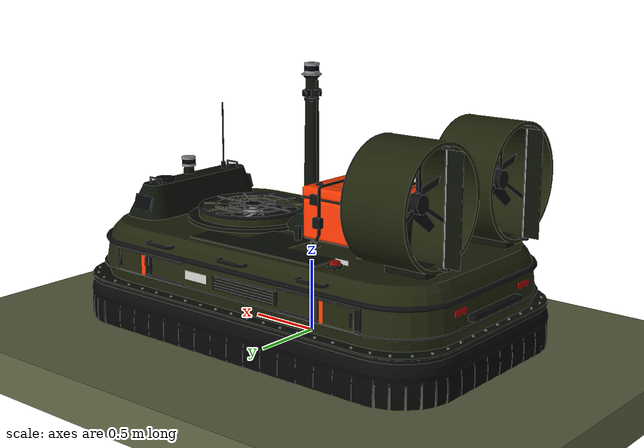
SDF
<?xml version="1.0"?>
<!-- GENERATED by hover_gazebo/scripts/gen_test_worlds_v3.py -->
<sdf version="1.9">
  <world name="v3_load_share_test">
    <physics name="1ms" type="dart">
      <max_step_size>0.001</max_step_size>
      <real_time_factor>1.0</real_time_factor>
      <dart><collision_detector>bullet</collision_detector></dart>
    </physics>
    <gravity>0 0 -9.81</gravity>
    <spherical_coordinates>
      <surface_model>EARTH_WGS84</surface_model>
      <latitude_deg>1.4466</latitude_deg><longitude_deg>103.7300</longitude_deg>
      <elevation>0</elevation><heading_deg>0</heading_deg>
    </spherical_coordinates>

    <plugin filename="gz-sim-physics-system" name="gz::sim::systems::Physics"/>
    <plugin filename="gz-sim-user-commands-system" name="gz::sim::systems::UserCommands"/>
    <plugin filename="gz-sim-scene-broadcaster-system" name="gz::sim::systems::SceneBroadcaster"/>
    <plugin filename="gz-sim-imu-system" name="gz::sim::systems::Imu"/>
    <plugin filename="gz-sim-navsat-system" name="gz::sim::systems::NavSat"/>
    <plugin filename="gz-sim-sensors-system" name="gz::sim::systems::Sensors">
      <render_engine>ogre2</render_engine>
    </plugin>
    <plugin filename="tidal_vehicle_plugins" name="hover::TerrainZones">
      <ground_height>0.0</ground_height>
    </plugin>
    <plugin filename="tidal_vehicle_plugins" name="hover::ScriptedCommands">
      <command><time>0.5</time><topic>/model/hovercraft_v3/lift_share</topic><type>gz.msgs.Double</type><data>data: 0.6</data></command>
      <command><time>0.6</time><topic>/model/hovercraft_v3/hover_enabled</topic><type>gz.msgs.Boolean</type><data>data: true</data></command>
      <command><time>6.0</time><topic>/model/hovercraft_v3/cmd_vel</topic><type>gz.msgs.Twist</type><data>linear { x: 1.0 } angular { z: 0.0 }</data></command>
      <command><time>6.2</time><topic>/model/hovercraft_v3/cmd_vel</topic><type>gz.msgs.Twist</type><data>linear { x: 1.0 } angular { z: 0.0 }</data></command>
      <command><time>6.4</time><topic>/model/hovercraft_v3/cmd_vel</topic><type>gz.msgs.Twist</type><data>linear { x: 1.0 } angular { z: 0.0 }</data></command>
      <command><time>6.6</time><topic>/model/hovercraft_v3/cmd_vel</topic><type>gz.msgs.Twist</type><data>linear { x: 1.0 } angular { z: 0.0 }</data></command>
      <command><time>6.8</time><topic>/model/hovercraft_v3/cmd_vel</topic><type>gz.msgs.Twist</type><data>linear { x: 1.0 } angular { z: 0.0 }</data></command>
      <command><time>7.0</time><topic>/model/hovercraft_v3/cmd_vel</topic><type>gz.msgs.Twist</type><data>linear { x: 1.0 } angular { z: 0.0 }</data></command>
      <command><time>7.2</time><topic>/model/hovercraft_v3/cmd_vel</topic><type>gz.msgs.Twist</type><data>linear { x: 1.0 } angular { z: 0.0 }</data></command>
      <command><time>7.4</time><topic>/model/hovercraft_v3/cmd_vel</topic><type>gz.msgs.Twist</type><data>linear { x: 1.0 } angular { z: 0.0 }</data></command>
      <command><time>7.6</time><topic>/model/hovercraft_v3/cmd_vel</topic><type>gz.msgs.Twist</type><data>linear { x: 1.0 } angular { z: 0.0 }</data></command>
      <command><time>7.8</time><topic>/model/hovercraft_v3/cmd_vel</topic><type>gz.msgs.Twist</type><data>linear { x: 1.0 } angular { z: 0.0 }</data></command>
      <command><time>8.0</time><topic>/model/hovercraft_v3/cmd_vel</topic><type>gz.msgs.Twist</type><data>linear { x: 1.0 } angular { z: 0.0 }</data></command>
      <command><time>8.2</time><topic>/model/hovercraft_v3/cmd_vel</topic><type>gz.msgs.Twist</type><data>linear { x: 1.0 } angular { z: 0.0 }</data></command>
      <command><time>8.4</time><topic>/model/hovercraft_v3/cmd_vel</topic><type>gz.msgs.Twist</type><data>linear { x: 1.0 } angular { z: 0.0 }</data></command>
      <command><time>8.6</time><topic>/model/hovercraft_v3/cmd_vel</topic><type>gz.msgs.Twist</type><data>linear { x: 1.0 } angular { z: 0.0 }</data></command>
      <command><time>8.8</time><topic>/model/hovercraft_v3/cmd_vel</topic><type>gz.msgs.Twist</type><data>linear { x: 1.0 } angular { z: 0.0 }</data></command>
      <command><time>9.0</time><topic>/model/hovercraft_v3/cmd_vel</topic><type>gz.msgs.Twist</type><data>linear { x: 1.0 } angular { z: 0.0 }</data></command>
      <command><time>9.2</time><topic>/model/hovercraft_v3/cmd_vel</topic><type>gz.msgs.Twist</type><data>linear { x: 1.0 } angular { z: 0.0 }</data></command>
      <command><time>9.4</time><topic>/model/hovercraft_v3/cmd_vel</topic><type>gz.msgs.Twist</type><data>linear { x: 1.0 } angular { z: 0.0 }</data></command>
      <command><time>9.6</time><topic>/model/hovercraft_v3/cmd_vel</topic><type>gz.msgs.Twist</type><data>linear { x: 1.0 } angular { z: 0.0 }</data></command>
      <command><time>9.8</time><topic>/model/hovercraft_v3/cmd_vel</topic><type>gz.msgs.Twist</type><data>linear { x: 1.0 } angular { z: 0.0 }</data></command>
      <command><time>10.0</time><topic>/model/hovercraft_v3/cmd_vel</topic><type>gz.msgs.Twist</type><data>linear { x: 1.0 } angular { z: 0.0 }</data></command>
      <command><time>10.2</time><topic>/model/hovercraft_v3/cmd_vel</topic><type>gz.msgs.Twist</type><data>linear { x: 1.0 } angular { z: 0.0 }</data></command>
      <command><time>10.4</time><topic>/model/hovercraft_v3/cmd_vel</topic><type>gz.msgs.Twist</type><data>linear { x: 1.0 } angular { z: 0.0 }</data></command>
      <command><time>10.6</time><topic>/model/hovercraft_v3/cmd_vel</topic><type>gz.msgs.Twist</type><data>linear { x: 1.0 } angular { z: 0.0 }</data></command>
      <command><time>10.8</time><topic>/model/hovercraft_v3/cmd_vel</topic><type>gz.msgs.Twist</type><data>linear { x: 1.0 } angular { z: 0.0 }</data></command>
      <command><time>11.0</time><topic>/model/hovercraft_v3/cmd_vel</topic><type>gz.msgs.Twist</type><data>linear { x: 1.0 } angular { z: 0.0 }</data></command>
      <command><time>11.2</time><topic>/model/hovercraft_v3/cmd_vel</topic><type>gz.msgs.Twist</type><data>linear { x: 1.0 } angular { z: 0.0 }</data></command>
      <command><time>11.4</time><topic>/model/hovercraft_v3/cmd_vel</topic><type>gz.msgs.Twist</type><data>linear { x: 1.0 } angular { z: 0.0 }</data></command>
      <command><time>11.6</time><topic>/model/hovercraft_v3/cmd_vel</topic><type>gz.msgs.Twist</type><data>linear { x: 1.0 } angular { z: 0.0 }</data></command>
      <command><time>11.8</time><topic>/model/hovercraft_v3/cmd_vel</topic><type>gz.msgs.Twist</type><data>linear { x: 1.0 } angular { z: 0.0 }</data></command>
      <command><time>12.0</time><topic>/model/hovercraft_v3/cmd_vel</topic><type>gz.msgs.Twist</type><data>linear { x: 1.0 } angular { z: 0.0 }</data></command>
      <command><time>12.2</time><topic>/model/hovercraft_v3/cmd_vel</topic><type>gz.msgs.Twist</type><data>linear { x: 1.0 } angular { z: 0.0 }</data></command>
      <command><time>12.4</time><topic>/model/hovercraft_v3/cmd_vel</topic><type>gz.msgs.Twist</type><data>linear { x: 1.0 } angular { z: 0.0 }</data></command>
      <command><time>12.6</time><topic>/model/hovercraft_v3/cmd_vel</topic><type>gz.msgs.Twist</type><data>linear { x: 1.0 } angular { z: 0.0 }</data></command>
      <command><time>12.8</time><topic>/model/hovercraft_v3/cmd_vel</topic><type>gz.msgs.Twist</type><data>linear { x: 1.0 } angular { z: 0.0 }</data></command>
      <command><time>13.0</time><topic>/model/hovercraft_v3/cmd_vel</topic><type>gz.msgs.Twist</type><data>linear { x: 1.0 } angular { z: 0.0 }</data></command>
      <command><time>13.2</time><topic>/model/hovercraft_v3/cmd_vel</topic><type>gz.msgs.Twist</type><data>linear { x: 1.0 } angular { z: 0.0 }</data></command>
      <command><time>13.4</time><topic>/model/hovercraft_v3/cmd_vel</topic><type>gz.msgs.Twist</type><data>linear { x: 1.0 } angular { z: 0.0 }</data></command>
      <command><time>13.6</time><topic>/model/hovercraft_v3/cmd_vel</topic><type>gz.msgs.Twist</type><data>linear { x: 1.0 } angular { z: 0.0 }</data></command>
      <command><time>13.8</time><topic>/model/hovercraft_v3/cmd_vel</topic><type>gz.msgs.Twist</type><data>linear { x: 1.0 } angular { z: 0.0 }</data></command>
      <command><time>14.0</time><topic>/model/hovercraft_v3/cmd_vel</topic><type>gz.msgs.Twist</type><data>linear { x: 0.0 } angular { z: 0.0 }</data></command>
      <command><time>14.2</time><topic>/model/hovercraft_v3/cmd_vel</topic><type>gz.msgs.Twist</type><data>linear { x: 0.0 } angular { z: 0.0 }</data></command>
      <command><time>14.4</time><topic>/model/hovercraft_v3/cmd_vel</topic><type>gz.msgs.Twist</type><data>linear { x: 0.0 } angular { z: 0.0 }</data></command>
      <command><time>14.6</time><topic>/model/hovercraft_v3/cmd_vel</topic><type>gz.msgs.Twist</type><data>linear { x: 0.0 } angular { z: 0.0 }</data></command>
      <command><time>14.8</time><topic>/model/hovercraft_v3/cmd_vel</topic><type>gz.msgs.Twist</type><data>linear { x: 0.0 } angular { z: 0.0 }</data></command>
      <command><time>15.0</time><topic>/model/hovercraft_v3/cmd_vel</topic><type>gz.msgs.Twist</type><data>linear { x: 0.0 } angular { z: 0.0 }</data></command>
      <command><time>15.2</time><topic>/model/hovercraft_v3/cmd_vel</topic><type>gz.msgs.Twist</type><data>linear { x: 0.0 } angular { z: 0.0 }</data></command>
      <command><time>15.4</time><topic>/model/hovercraft_v3/cmd_vel</topic><type>gz.msgs.Twist</type><data>linear { x: 0.0 } angular { z: 0.0 }</data></command>
      <command><time>15.6</time><topic>/model/hovercraft_v3/cmd_vel</topic><type>gz.msgs.Twist</type><data>linear { x: 0.0 } angular { z: 0.0 }</data></command>
      <command><time>15.8</time><topic>/model/hovercraft_v3/cmd_vel</topic><type>gz.msgs.Twist</type><data>linear { x: 0.0 } angular { z: 0.0 }</data></command>
      <command><time>16.0</time><topic>/model/hovercraft_v3/cmd_vel</topic><type>gz.msgs.Twist</type><data>linear { x: 0.0 } angular { z: 0.0 }</data></command>
      <command><time>16.2</time><topic>/model/hovercraft_v3/cmd_vel</topic><type>gz.msgs.Twist</type><data>linear { x: 0.0 } angular { z: 0.0 }</data></command>
      <command><time>16.4</time><topic>/model/hovercraft_v3/cmd_vel</topic><type>gz.msgs.Twist</type><data>linear { x: 0.0 } angular { z: 0.0 }</data></command>
      <command><time>16.6</time><topic>/model/hovercraft_v3/cmd_vel</topic><type>gz.msgs.Twist</type><data>linear { x: 0.0 } angular { z: 0.0 }</data></command>
      <command><time>16.8</time><topic>/model/hovercraft_v3/cmd_vel</topic><type>gz.msgs.Twist</type><data>linear { x: 0.0 } angular { z: 0.0 }</data></command>
      <command><time>17.0</time><topic>/model/hovercraft_v3/cmd_vel</topic><type>gz.msgs.Twist</type><data>linear { x: 0.0 } angular { z: 0.0 }</data></command>
      <command><time>17.2</time><topic>/model/hovercraft_v3/cmd_vel</topic><type>gz.msgs.Twist</type><data>linear { x: 0.0 } angular { z: 0.0 }</data></command>
      <command><time>17.4</time><topic>/model/hovercraft_v3/cmd_vel</topic><type>gz.msgs.Twist</type><data>linear { x: 0.0 } angular { z: 0.0 }</data></command>
      <command><time>17.6</time><topic>/model/hovercraft_v3/cmd_vel</topic><type>gz.msgs.Twist</type><data>linear { x: 0.0 } angular { z: 0.0 }</data></command>
      <command><time>17.8</time><topic>/model/hovercraft_v3/cmd_vel</topic><type>gz.msgs.Twist</type><data>linear { x: 0.0 } angular { z: 0.0 }</data></command>
    </plugin>

    <scene><ambient>0.5 0.5 0.5 1</ambient><background>0.7 0.8 0.9 1</background><grid>false</grid></scene>
    <light type="directional" name="sun">
      <cast_shadows>true</cast_shadows><pose>0 0 10 0 0 0</pose>
      <diffuse>0.9 0.9 0.85 1</diffuse><specular>0.2 0.2 0.2 1</specular>
      <direction>-0.4 0.3 -0.9</direction>
    </light>

    <model name="ground">
      <static>true</static>
      <pose>15.0 0.0 -0.15 0 0 0</pose>
      <link name="link">
        <collision name="c">
          <geometry><box><size>50 24 0.3</size></box></geometry>
          <surface><friction><ode><mu>1.0</mu><mu2>1.0</mu2></ode></friction></surface>
        </collision>
        <visual name="v">
          <geometry><box><size>50 24 0.3</size></box></geometry>
          <material><ambient>0.36 0.38 0.26 1</ambient><diffuse>0.36 0.38 0.26 1</diffuse>
            <specular>0.05 0.05 0.05 1</specular></material>
        </visual>
      </link>
    </model>
    <include>
      <uri>model://hovercraft_v3</uri>
      <name>hovercraft_v3</name>
      <pose>0 0 0.002 0 0 0.0</pose>
    </include>
  </world>
</sdf>

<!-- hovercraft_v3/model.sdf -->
<!-- GENERATED by tidal_vehicle_description/scripts/gen_description_v3.py from link_frames.json. Do not edit by hand. -->
<!-- Vehicle Version 3. Model frame: ground plane under hull centre; vehicle standing on its deployed tracks. -->
<!-- Total mass 530.00 kg; hull CoM offset 0.273369 0 -0.08; vehicle CoM height 0.525 m (TRACK mode). -->
<sdf version="1.9">
  <model name="hovercraft_v3">
    <self_collide>false</self_collide>

    <link name="base_link">
      <pose>0 0 0.5 0 0 0</pose>
      <inertial>
        <pose>0.273369 0 -0.08 0 0 0</pose>
        <mass>287.4</mass>
        <inertia><ixx>53.4947</ixx><ixy>0</ixy><ixz>0</ixz>
                 <iyy>186.274</iyy><iyz>0</iyz><izz>232.104</izz></inertia>
      </inertial>
      <visual name="visual">
        <geometry><mesh><uri>model://hovercraft_v3/meshes/hull.dae</uri></mesh></geometry>
      </visual>
      <collision name="collision">
        <pose>0 0 0.01 0 0 0</pose>
        <geometry><box><size>2.76 1.44 0.4</size></box></geometry>
        <surface><friction><ode><mu>0.3</mu><mu2>0.3</mu2></ode></friction></surface>
      </collision>
      <sensor name="imu" type="imu"><pose>0 0 0 0 0 0</pose><gz_frame_id>imu_link</gz_frame_id>
        <always_on>1</always_on><update_rate>50</update_rate><topic>__default__</topic>
      </sensor>
      <sensor name="navsat" type="navsat"><pose>1.116 0.3 0.48 0 0 0</pose><gz_frame_id>base_link</gz_frame_id>
        <always_on>1</always_on><update_rate>10</update_rate>
      </sensor>
      <sensor name="rear_camera" type="camera"><pose>-0.075 9.18485e-18 1.16 0 0.261799 3.14159</pose><gz_frame_id>camera_rear_link</gz_frame_id>
        <always_on>1</always_on><update_rate>5</update_rate>
        <topic>/model/hovercraft_v3/camera/rear/image</topic>
        <camera><horizontal_fov>1.40</horizontal_fov>
          <image><width>320</width><height>240</height><format>R8G8B8</format></image>
          <clip><near>0.05</near><far>60</far></clip></camera>
      </sensor>
      <sensor name="left_camera" type="camera"><pose>4.59243e-18 0.075 1.16 0 0.261799 1.5708</pose><gz_frame_id>camera_left_link</gz_frame_id>
        <always_on>1</always_on><update_rate>5</update_rate>
        <topic>/model/hovercraft_v3/camera/left/image</topic>
        <camera><horizontal_fov>1.40</horizontal_fov>
          <image><width>320</width><height>240</height><format>R8G8B8</format></image>
          <clip><near>0.05</near><far>60</far></clip></camera>
      </sensor>
      <sensor name="right_camera" type="camera"><pose>4.59243e-18 -0.075 1.16 0 0.261799 -1.5708</pose><gz_frame_id>camera_right_link</gz_frame_id>
        <always_on>1</always_on><update_rate>5</update_rate>
        <topic>/model/hovercraft_v3/camera/right/image</topic>
        <camera><horizontal_fov>1.40</horizontal_fov>
          <image><width>320</width><height>240</height><format>R8G8B8</format></image>
          <clip><near>0.05</near><far>60</far></clip></camera>
      </sensor>
      <sensor name="ranger_fl" type="gpu_lidar"><pose>1.2 0.6 -0.2 0 1.5708 0</pose><gz_frame_id>base_link</gz_frame_id>
        <always_on>0</always_on><update_rate>10</update_rate>
        <!-- 5 rays over +/-3 deg (a narrow ToF beam). A single-sample gpu_lidar
             returns wrong ranges in gz-sensors 8, so don't use samples = 1. -->
        <lidar><scan><horizontal><samples>5</samples><resolution>1</resolution>
          <min_angle>-0.05</min_angle><max_angle>0.05</max_angle></horizontal></scan>
          <range><min>0.01</min><max>2.0</max><resolution>0.001</resolution></range></lidar>
      </sensor>
      <sensor name="ranger_fr" type="gpu_lidar"><pose>1.2 -0.6 -0.2 0 1.5708 0</pose><gz_frame_id>base_link</gz_frame_id>
        <always_on>0</always_on><update_rate>10</update_rate>
        <!-- 5 rays over +/-3 deg (a narrow ToF beam). A single-sample gpu_lidar
             returns wrong ranges in gz-sensors 8, so don't use samples = 1. -->
        <lidar><scan><horizontal><samples>5</samples><resolution>1</resolution>
          <min_angle>-0.05</min_angle><max_angle>0.05</max_angle></horizontal></scan>
          <range><min>0.01</min><max>2.0</max><resolution>0.001</resolution></range></lidar>
      </sensor>
      <sensor name="ranger_rl" type="gpu_lidar"><pose>-1.2 0.6 -0.2 0 1.5708 0</pose><gz_frame_id>base_link</gz_frame_id>
        <always_on>0</always_on><update_rate>10</update_rate>
        <!-- 5 rays over +/-3 deg (a narrow ToF beam). A single-sample gpu_lidar
             returns wrong ranges in gz-sensors 8, so don't use samples = 1. -->
        <lidar><scan><horizontal><samples>5</samples><resolution>1</resolution>
          <min_angle>-0.05</min_angle><max_angle>0.05</max_angle></horizontal></scan>
          <range><min>0.01</min><max>2.0</max><resolution>0.001</resolution></range></lidar>
      </sensor>
      <sensor name="ranger_rr" type="gpu_lidar"><pose>-1.2 -0.6 -0.2 0 1.5708 0</pose><gz_frame_id>base_link</gz_frame_id>
        <always_on>0</always_on><update_rate>10</update_rate>
        <!-- 5 rays over +/-3 deg (a narrow ToF beam). A single-sample gpu_lidar
             returns wrong ranges in gz-sensors 8, so don't use samples = 1. -->
        <lidar><scan><horizontal><samples>5</samples><resolution>1</resolution>
          <min_angle>-0.05</min_angle><max_angle>0.05</max_angle></horizontal></scan>
          <range><min>0.01</min><max>2.0</max><resolution>0.001</resolution></range></lidar>
      </sensor>
      <sensor name="contact_collision" type="contact">
        <always_on>1</always_on><update_rate>20</update_rate>
        <contact><collision>collision</collision><topic>/model/hovercraft_v3/contact/hull</topic></contact>
      </sensor>
    </link>
    <link name="skirt">
      <pose>0 0 0.23 0 0 0</pose>
      <inertial>
        <pose>0 0 0 0 0 0</pose>
        <mass>22.0</mass>
        <inertia><ixx>5.9994</ixx><ixy>0</ixy><ixz>0</ixz>
                 <iyy>14.6388</iyy><iyz>0</iyz><izz>20.5194</izz></inertia>
      </inertial>
      <visual name="visual">
        <geometry><mesh><uri>model://hovercraft_v3/meshes/skirt.dae</uri></mesh></geometry>
      </visual>
      <collision name="collision">
        <pose>0 0 0 0 0 0</pose>
        <geometry><box><size>2.82 1.8 0.18</size></box></geometry>
        <surface><friction><ode><mu>0.2</mu><mu2>0.2</mu2></ode></friction></surface>
      </collision>
      <collision name="collision_1">
        <pose>1.41 0 0 1.5708 0 0</pose>
        <geometry><cylinder><radius>0.09</radius><length>1.8</length></cylinder></geometry>
        <surface><friction><ode><mu>0.2</mu><mu2>0.2</mu2></ode></friction></surface>
      </collision>
      <collision name="collision_2">
        <pose>-1.41 0 0 1.5708 0 0</pose>
        <geometry><cylinder><radius>0.09</radius><length>1.8</length></cylinder></geometry>
        <surface><friction><ode><mu>0.2</mu><mu2>0.2</mu2></ode></friction></surface>
      </collision>
      <sensor name="contact_collision" type="contact">
        <always_on>1</always_on><update_rate>20</update_rate>
        <contact><collision>collision</collision><topic>/model/hovercraft_v3/contact/skirt</topic></contact>
      </sensor>
      <sensor name="contact_collision_1" type="contact">
        <always_on>1</always_on><update_rate>20</update_rate>
        <contact><collision>collision_1</collision><topic>/model/hovercraft_v3/contact/skirt</topic></contact>
      </sensor>
      <sensor name="contact_collision_2" type="contact">
        <always_on>1</always_on><update_rate>20</update_rate>
        <contact><collision>collision_2</collision><topic>/model/hovercraft_v3/contact/skirt</topic></contact>
      </sensor>
    </link>
    <link name="lift_fan">
      <pose>0.54 0 0.74 0 0 0</pose>
      <inertial>
        <pose>0 0 0 0 0 0</pose>
        <mass>15.0</mass>
        <inertia><ixx>0.42536</ixx><ixy>0</ixy><ixz>0</ixz>
                 <iyy>0.42536</iyy><iyz>0</iyz><izz>0.84672</izz></inertia>
      </inertial>
      <visual name="visual">
        <geometry><mesh><uri>model://hovercraft_v3/meshes/lift_fan.dae</uri></mesh></geometry>
      </visual>
    </link>
    <link name="thrust_fan_left">
      <pose>-1.1 0.45 1.16 0 0 0</pose>
      <inertial>
        <pose>0 0 0 0 0 0</pose>
        <mass>14.0</mass>
        <inertia><ixx>0.8575</ixx><ixy>0</ixy><ixz>0</ixz>
                 <iyy>0.430617</iyy><iyz>0</iyz><izz>0.430617</izz></inertia>
      </inertial>
      <visual name="visual">
        <geometry><mesh><uri>model://hovercraft_v3/meshes/thrust_fan_left.dae</uri></mesh></geometry>
      </visual>
    </link>
    <link name="thrust_fan_right">
      <pose>-1.1 -0.45 1.16 0 0 0</pose>
      <inertial>
        <pose>0 0 0 0 0 0</pose>
        <mass>14.0</mass>
        <inertia><ixx>0.8575</ixx><ixy>0</ixy><ixz>0</ixz>
                 <iyy>0.430617</iyy><iyz>0</iyz><izz>0.430617</izz></inertia>
      </inertial>
      <visual name="visual">
        <geometry><mesh><uri>model://hovercraft_v3/meshes/thrust_fan_right.dae</uri></mesh></geometry>
      </visual>
    </link>
    <link name="rudder_left">
      <pose>-1.38 0.45 1.16 0 0 0</pose>
      <inertial>
        <pose>-0.048 0 0 0 0 0</pose>
        <mass>2.0</mass>
        <inertia><ixx>0.0816907</ixx><ixy>0</ixy><ixz>0</ixz>
                 <iyy>0.0840667</iyy><iyz>0</iyz><izz>0.002424</izz></inertia>
      </inertial>
      <visual name="visual">
        <geometry><mesh><uri>model://hovercraft_v3/meshes/rudder_left.dae</uri></mesh></geometry>
      </visual>
    </link>
    <link name="rudder_right">
      <pose>-1.38 -0.45 1.16 0 0 0</pose>
      <inertial>
        <pose>-0.048 0 0 0 0 0</pose>
        <mass>2.0</mass>
        <inertia><ixx>0.0816907</ixx><ixy>0</ixy><ixz>0</ixz>
                 <iyy>0.0840667</iyy><iyz>0</iyz><izz>0.002424</izz></inertia>
      </inertial>
      <visual name="visual">
        <geometry><mesh><uri>model://hovercraft_v3/meshes/rudder_right.dae</uri></mesh></geometry>
      </visual>
    </link>
    <link name="track_left">
      <pose>0 0.5 0.14 0 0 0</pose>
      <inertial>
        <pose>0 0 0 0 0 0</pose>
        <mass>35.0</mass>
        <inertia><ixx>0.527333</ixx><ixy>0</ixy><ixz>0</ixz>
                 <iyy>8.65783</iyy><iyz>0</iyz><izz>8.72783</izz></inertia>
      </inertial>
      <visual name="visual">
        <geometry><mesh><uri>model://hovercraft_v3/meshes/track_left.dae</uri></mesh></geometry>
      </visual>
      <collision name="collision">
        <pose>0 0 0 0 0 0</pose>
        <geometry><box><size>1.7 0.32 0.28</size></box></geometry>
        <surface><friction><ode><mu>1.0</mu><mu2>1.0</mu2></ode></friction></surface>
      </collision>
      <collision name="collision_1">
        <pose>0.85 0 0 1.5708 0 0</pose>
        <geometry><cylinder><radius>0.14</radius><length>0.32</length></cylinder></geometry>
        <surface><friction><ode><mu>1.0</mu><mu2>1.0</mu2></ode></friction></surface>
      </collision>
      <collision name="collision_2">
        <pose>-0.85 0 0 1.5708 0 0</pose>
        <geometry><cylinder><radius>0.14</radius><length>0.32</length></cylinder></geometry>
        <surface><friction><ode><mu>1.0</mu><mu2>1.0</mu2></ode></friction></surface>
      </collision>
      <sensor name="contact_collision" type="contact">
        <always_on>1</always_on><update_rate>20</update_rate>
        <contact><collision>collision</collision><topic>/model/hovercraft_v3/contact/track_left</topic></contact>
      </sensor>
      <sensor name="contact_collision_1" type="contact">
        <always_on>1</always_on><update_rate>20</update_rate>
        <contact><collision>collision_1</collision><topic>/model/hovercraft_v3/contact/track_left</topic></contact>
      </sensor>
      <sensor name="contact_collision_2" type="contact">
        <always_on>1</always_on><update_rate>20</update_rate>
        <contact><collision>collision_2</collision><topic>/model/hovercraft_v3/contact/track_left</topic></contact>
      </sensor>
    </link>
    <link name="track_right">
      <pose>0 -0.5 0.14 0 0 0</pose>
      <inertial>
        <pose>0 0 0 0 0 0</pose>
        <mass>35.0</mass>
        <inertia><ixx>0.527333</ixx><ixy>0</ixy><ixz>0</ixz>
                 <iyy>8.65783</iyy><iyz>0</iyz><izz>8.72783</izz></inertia>
      </inertial>
      <visual name="visual">
        <geometry><mesh><uri>model://hovercraft_v3/meshes/track_right.dae</uri></mesh></geometry>
      </visual>
      <collision name="collision">
        <pose>0 0 0 0 0 0</pose>
        <geometry><box><size>1.7 0.32 0.28</size></box></geometry>
        <surface><friction><ode><mu>1.0</mu><mu2>1.0</mu2></ode></friction></surface>
      </collision>
      <collision name="collision_1">
        <pose>0.85 0 0 1.5708 0 0</pose>
        <geometry><cylinder><radius>0.14</radius><length>0.32</length></cylinder></geometry>
        <surface><friction><ode><mu>1.0</mu><mu2>1.0</mu2></ode></friction></surface>
      </collision>
      <collision name="collision_2">
        <pose>-0.85 0 0 1.5708 0 0</pose>
        <geometry><cylinder><radius>0.14</radius><length>0.32</length></cylinder></geometry>
        <surface><friction><ode><mu>1.0</mu><mu2>1.0</mu2></ode></friction></surface>
      </collision>
      <sensor name="contact_collision" type="contact">
        <always_on>1</always_on><update_rate>20</update_rate>
        <contact><collision>collision</collision><topic>/model/hovercraft_v3/contact/track_right</topic></contact>
      </sensor>
      <sensor name="contact_collision_1" type="contact">
        <always_on>1</always_on><update_rate>20</update_rate>
        <contact><collision>collision_1</collision><topic>/model/hovercraft_v3/contact/track_right</topic></contact>
      </sensor>
      <sensor name="contact_collision_2" type="contact">
        <always_on>1</always_on><update_rate>20</update_rate>
        <contact><collision>collision_2</collision><topic>/model/hovercraft_v3/contact/track_right</topic></contact>
      </sensor>
    </link>
    <link name="puff_bow_left">
      <pose>0.888 0.84 0.51 0 0 0</pose>
      <inertial>
        <pose>0 0 0 0 0 0</pose>
        <mass>0.6</mass>
        <inertia><ixx>0.0009818</ixx><ixy>0</ixy><ixz>0</ixz>
                 <iyy>0.0057232</iyy><iyz>0</iyz><izz>0.004745</izz></inertia>
      </inertial>
      <visual name="visual">
        <geometry><mesh><uri>model://hovercraft_v3/meshes/puff_bow_left.dae</uri></mesh></geometry>
      </visual>
    </link>
    <link name="puff_bow_right">
      <pose>0.888 -0.84 0.51 0 0 0</pose>
      <inertial>
        <pose>0 0 0 0 0 0</pose>
        <mass>0.6</mass>
        <inertia><ixx>0.0009818</ixx><ixy>0</ixy><ixz>0</ixz>
                 <iyy>0.0057232</iyy><iyz>0</iyz><izz>0.004745</izz></inertia>
      </inertial>
      <visual name="visual">
        <geometry><mesh><uri>model://hovercraft_v3/meshes/puff_bow_right.dae</uri></mesh></geometry>
      </visual>
    </link>
    <link name="puff_stern_left">
      <pose>-0.888 0.84 0.51 0 0 0</pose>
      <inertial>
        <pose>0 0 0 0 0 0</pose>
        <mass>0.6</mass>
        <inertia><ixx>0.0009818</ixx><ixy>0</ixy><ixz>0</ixz>
                 <iyy>0.0057232</iyy><iyz>0</iyz><izz>0.004745</izz></inertia>
      </inertial>
      <visual name="visual">
        <geometry><mesh><uri>model://hovercraft_v3/meshes/puff_stern_left.dae</uri></mesh></geometry>
      </visual>
    </link>
    <link name="puff_stern_right">
      <pose>-0.888 -0.84 0.51 0 0 0</pose>
      <inertial>
        <pose>0 0 0 0 0 0</pose>
        <mass>0.6</mass>
        <inertia><ixx>0.0009818</ixx><ixy>0</ixy><ixz>0</ixz>
                 <iyy>0.0057232</iyy><iyz>0</iyz><izz>0.004745</izz></inertia>
      </inertial>
      <visual name="visual">
        <geometry><mesh><uri>model://hovercraft_v3/meshes/puff_stern_right.dae</uri></mesh></geometry>
      </visual>
    </link>
    <link name="payload_box">
      <pose>-0.504 0 0.74 0 0 0</pose>
      <inertial>
        <pose>0 0 0.175 0 0 0</pose>
        <mass>100.0</mass>
        <inertia><ixx>3.45083</ixx><ixy>0</ixy><ixz>0</ixz>
                 <iyy>5.34083</iyy><iyz>0</iyz><izz>6.75</izz></inertia>
      </inertial>
      <visual name="visual">
        <geometry><mesh><uri>model://hovercraft_v3/meshes/payload_box.dae</uri></mesh></geometry>
      </visual>
      <collision name="collision">
        <pose>0 0 0.175 0 0 0</pose>
        <geometry><box><size>0.72 0.54 0.35</size></box></geometry>
        <surface><friction><ode><mu>0.5</mu><mu2>0.5</mu2></ode></friction></surface>
      </collision>
    </link>
    <link name="lidar_link">
      <pose>0 0 1.82 0 0 0</pose>
      <inertial>
        <pose>0 0 0 0 0 0</pose>
        <mass>1.0</mass>
        <inertia><ixx>0.00109147</ixx><ixy>0</ixy><ixz>0</ixz>
                 <iyy>0.00109147</iyy><iyz>0</iyz><izz>0.00132612</izz></inertia>
      </inertial>
      <visual name="visual">
        <geometry><mesh><uri>model://hovercraft_v3/meshes/lidar.dae</uri></mesh></geometry>
      </visual>
      <collision name="collision">
        <pose>0 0 0 0 0 0</pose>
        <geometry><cylinder><radius>0.0515</radius><length>0.0717</length></cylinder></geometry>
        <surface><friction><ode><mu>0.5</mu><mu2>0.5</mu2></ode></friction></surface>
      </collision>
      <sensor name="lidar_3d" type="gpu_lidar"><pose>0 0 0 0 0 0</pose><gz_frame_id>lidar_link</gz_frame_id>
        <always_on>1</always_on><update_rate>5</update_rate><visualize>0</visualize>
        <lidar>
          <scan>
            <horizontal><samples>360</samples><resolution>1</resolution>
              <min_angle>-3.14159</min_angle><max_angle>3.14159</max_angle></horizontal>
            <vertical><samples>8</samples><resolution>1</resolution>
              <min_angle>-0.26180</min_angle>
              <max_angle>0.26180</max_angle></vertical>
          </scan>
          <range><min>0.3</min><max>30.0</max><resolution>0.01</resolution></range>
          <noise><type>gaussian</type><mean>0</mean><stddev>0.01</stddev></noise>
        </lidar>
      </sensor>
    </link>
    <link name="camera_link">
      <pose>1.284 0 0.8 0 0 0</pose>
      <inertial>
        <pose>-0.055 0 0 0 0 0</pose>
        <mass>0.2</mass>
        <inertia><ixx>0.000295417</ixx><ixy>0</ixy><ixz>0</ixz>
                 <iyy>0.0001875</iyy><iyz>0</iyz><izz>0.000295417</izz></inertia>
      </inertial>
      <visual name="visual">
        <geometry><mesh><uri>model://hovercraft_v3/meshes/camera.dae</uri></mesh></geometry>
      </visual>
      <collision name="collision">
        <pose>-0.055 0 0 0 0 0</pose>
        <geometry><box><size>0.075 0.11 0.075</size></box></geometry>
        <surface><friction><ode><mu>0.5</mu><mu2>0.5</mu2></ode></friction></surface>
      </collision>
      <!-- Operator-camera profile: sufficient for scene awareness while
           avoiding a high-resolution render every simulation tick. -->
      <sensor name="front_camera" type="camera"><pose>0 0 0 0 0 0</pose><gz_frame_id>camera_link</gz_frame_id>
        <always_on>1</always_on><update_rate>5</update_rate>
        <camera><horizontal_fov>1.40</horizontal_fov>
          <image><width>320</width><height>240</height><format>R8G8B8</format></image>
          <clip><near>0.05</near><far>60</far></clip></camera>
      </sensor>
    </link>

    <joint name="skirt_joint" type="fixed">
      <parent>base_link</parent>
      <child>skirt</child>
    </joint>
    <joint name="lift_fan_joint" type="revolute">
      <parent>base_link</parent>
      <child>lift_fan</child>
      <axis>
        <xyz>0 0 1</xyz>
        <limit><lower>-1e16</lower><upper>1e16</upper><effort>20</effort></limit>
        <dynamics><damping>0.01</damping></dynamics>
      </axis>
    </joint>
    <joint name="thrust_fan_left_joint" type="revolute">
      <parent>base_link</parent>
      <child>thrust_fan_left</child>
      <axis>
        <xyz>1 0 0</xyz>
        <limit><lower>-1e16</lower><upper>1e16</upper><effort>20</effort></limit>
        <dynamics><damping>0.01</damping></dynamics>
      </axis>
    </joint>
    <joint name="thrust_fan_right_joint" type="revolute">
      <parent>base_link</parent>
      <child>thrust_fan_right</child>
      <axis>
        <xyz>1 0 0</xyz>
        <limit><lower>-1e16</lower><upper>1e16</upper><effort>20</effort></limit>
        <dynamics><damping>0.01</damping></dynamics>
      </axis>
    </joint>
    <joint name="rudder_left_joint" type="revolute">
      <parent>base_link</parent>
      <child>rudder_left</child>
      <axis>
        <xyz>0 0 1</xyz>
        <limit><lower>-0.5236</lower><upper>0.5236</upper><effort>20</effort></limit>
        <dynamics><damping>0.5</damping></dynamics>
      </axis>
    </joint>
    <joint name="rudder_right_joint" type="revolute">
      <parent>base_link</parent>
      <child>rudder_right</child>
      <axis>
        <xyz>0 0 1</xyz>
        <limit><lower>-0.5236</lower><upper>0.5236</upper><effort>20</effort></limit>
        <dynamics><damping>0.5</damping></dynamics>
      </axis>
    </joint>
    <joint name="track_left_joint" type="prismatic">
      <parent>base_link</parent>
      <child>track_left</child>
      <axis>
        <xyz>0 0 1</xyz>
        <limit><lower>-0.02</lower><upper>0.27</upper><effort>10000.0</effort></limit>
        <dynamics><damping>200.0</damping></dynamics>
      </axis>
    </joint>
    <joint name="track_right_joint" type="prismatic">
      <parent>base_link</parent>
      <child>track_right</child>
      <axis>
        <xyz>0 0 1</xyz>
        <limit><lower>-0.02</lower><upper>0.27</upper><effort>10000.0</effort></limit>
        <dynamics><damping>200.0</damping></dynamics>
      </axis>
    </joint>
    <joint name="puff_bow_left_joint" type="prismatic">
      <parent>base_link</parent>
      <child>puff_bow_left</child>
      <axis>
        <xyz>-1 0 0</xyz>
        <limit><lower>-0.02</lower><upper>0.332</upper><effort>20</effort></limit>
        <dynamics><damping>1.0</damping></dynamics>
      </axis>
    </joint>
    <joint name="puff_bow_right_joint" type="prismatic">
      <parent>base_link</parent>
      <child>puff_bow_right</child>
      <axis>
        <xyz>-1 0 0</xyz>
        <limit><lower>-0.02</lower><upper>0.332</upper><effort>20</effort></limit>
        <dynamics><damping>1.0</damping></dynamics>
      </axis>
    </joint>
    <joint name="puff_stern_left_joint" type="prismatic">
      <parent>base_link</parent>
      <child>puff_stern_left</child>
      <axis>
        <xyz>1 0 0</xyz>
        <limit><lower>-0.02</lower><upper>0.332</upper><effort>20</effort></limit>
        <dynamics><damping>1.0</damping></dynamics>
      </axis>
    </joint>
    <joint name="puff_stern_right_joint" type="prismatic">
      <parent>base_link</parent>
      <child>puff_stern_right</child>
      <axis>
        <xyz>1 0 0</xyz>
        <limit><lower>-0.02</lower><upper>0.332</upper><effort>20</effort></limit>
        <dynamics><damping>1.0</damping></dynamics>
      </axis>
    </joint>
    <joint name="payload_box_joint" type="fixed">
      <parent>base_link</parent>
      <child>payload_box</child>
    </joint>
    <joint name="lidar_joint" type="fixed">
      <parent>base_link</parent>
      <child>lidar_link</child>
    </joint>
    <joint name="camera_joint" type="fixed">
      <parent>base_link</parent>
      <child>camera_link</child>
    </joint>

    <plugin filename="tidal_vehicle_plugins" name="hover::AirCushion">
      <link_name>base_link</link_name>
      <corner>1.147 0.600 -0.470</corner><corner>1.147 -0.600 -0.470</corner><corner>-1.147 0.600 -0.470</corner><corner>-1.147 -0.600 -0.470</corner>
      <target_gap>0.05</target_gap>
      <stiffness>31800</stiffness>
      <damping>1410</damping>
      <max_force_factor>2.0</max_force_factor>
      <spinup_time>2.0</spinup_time>
      <glide_linear_drag>2</glide_linear_drag>
      <glide_quadratic_drag>0.6</glide_quadratic_drag>
      <glide_constant_drag>104</glide_constant_drag>
      <water_hump_drag>261</water_hump_drag><water_hump_speed>3.04</water_hump_speed>
      <thrust_falloff_speed>31.9</thrust_falloff_speed>
      <water_glide_drag_factor>1.0</water_glide_drag_factor>
      <glide_yaw_drag>500</glide_yaw_drag>
      <!-- sideways sliding: 5x the fore-aft skirt drag, so the skirt resists
           about 10 % of the weight sideways (mu_lat 0.10, as sized) -->
      <glide_lateral_factor>5</glide_lateral_factor>
      <max_thrust>470</max_thrust>
      <thrust_time_constant>0.4</thrust_time_constant>
      <!-- reversible ducted fans (AGENTS.md): 80 % reverse thrust, so the vehicle
           can brake and hold station on the corridor's ~5 deg shore incline -->
      <reverse_thrust_fraction>0.8</reverse_thrust_fraction>
      <yaw_reserve_fraction>0.3</yaw_reserve_fraction>
      <thrust_point_left>-1.1 0.45 0.66</thrust_point_left>
      <thrust_point_right>-1.1 -0.45 0.66</thrust_point_right>
      <rudder_point>-1.38 0 0.66</rudder_point>
      <mud_viscous_drag>3200</mud_viscous_drag>
      <mud_rolling_resistance>0.25</mud_rolling_resistance>
      <mud_yaw_drag>2500</mud_yaw_drag>
      <water_hull_drag>1270</water_hull_drag>
      <water_yaw_drag>1250</water_yaw_drag>
      <vent_length>0.06</vent_length>
      <rudder_wash_coeff>0.55</rudder_wash_coeff>
      <rudder_control>true</rudder_control>
      <rudder_max_angle>0.4363</rudder_max_angle>
      <rudder_min_thrust>141</rudder_min_thrust>
      <rudder_rate>1.5</rudder_rate>
      <!-- puff ports: bow/stern side vents of cushion air, 2*Cd*p*A each -->
      <puff_port_force>54.6</puff_port_force>
      <puff_port_point>0.888 0.8369 0.01</puff_port_point>
      <puff_port_time_constant>0.15</puff_port_time_constant>
      <puff_lateral_gain>300</puff_lateral_gain>
      <puff_shutter_travel>0.312</puff_shutter_travel>
      <heading_kp>1500</heading_kp><heading_kd>1000</heading_kd>
      <speed_kp>850</speed_kp><speed_ki>210</speed_ki><yaw_rate_kp>1000</yaw_rate_kp>
      <cmd_timeout>0.5</cmd_timeout>
      <use_raycast>true</use_raycast>
      <log_file>/tmp/hover_{model}.csv</log_file>
      <log_joint>track_left_joint</log_joint><log_joint>track_right_joint</log_joint>
      <log_joint>rudder_left_joint</log_joint><log_joint>puff_bow_right_joint</log_joint>
    </plugin>

    <plugin filename="gz-sim-track-controller-system" name="gz::sim::systems::TrackController">
      <link>track_left</link>
      <min_velocity>-4.70</min_velocity>
      <max_velocity>4.70</max_velocity>
    </plugin>
    <plugin filename="gz-sim-track-controller-system" name="gz::sim::systems::TrackController">
      <link>track_right</link>
      <min_velocity>-4.70</min_velocity>
      <max_velocity>4.70</max_velocity>
    </plugin>
    <plugin filename="gz-sim-tracked-vehicle-system" name="gz::sim::systems::TrackedVehicle">
      <left_track><link>track_left</link></left_track>
      <right_track><link>track_right</link></right_track>
      <tracks_separation>1.000</tracks_separation>
      <tracks_height>0.280</tracks_height>
      <steering_efficiency>0.5</steering_efficiency>
      <linear_velocity><min_velocity>-4.2</min_velocity><max_velocity>4.2</max_velocity>
        <min_acceleration>-1.5</min_acceleration><max_acceleration>1.0</max_acceleration></linear_velocity>
      <angular_velocity><min_velocity>-1.0</min_velocity><max_velocity>1.0</max_velocity>
        <min_acceleration>-2.0</min_acceleration><max_acceleration>2.0</max_acceleration></angular_velocity>
      <odom_topic>internal/track_odometry</odom_topic><tf_topic>internal/track_tf</tf_topic>
      <odom_publish_frequency>20</odom_publish_frequency>
    </plugin>

    <plugin filename="gz-sim-joint-position-controller-system" name="gz::sim::systems::JointPositionController">
      <joint_name>track_left_joint</joint_name>
      <sub_topic>tracks_cmd</sub_topic>
      <use_velocity_commands>true</use_velocity_commands>
      <p_gain>4.0</p_gain><i_gain>0</i_gain><d_gain>0</d_gain>
      <cmd_max>0.2</cmd_max><cmd_min>-0.2</cmd_min>
      <initial_position>0</initial_position>
    </plugin>
    <plugin filename="gz-sim-joint-position-controller-system" name="gz::sim::systems::JointPositionController">
      <joint_name>track_right_joint</joint_name>
      <sub_topic>tracks_cmd</sub_topic>
      <use_velocity_commands>true</use_velocity_commands>
      <p_gain>4.0</p_gain><i_gain>0</i_gain><d_gain>0</d_gain>
      <cmd_max>0.2</cmd_max><cmd_min>-0.2</cmd_min>
      <initial_position>0</initial_position>
    </plugin>
    <plugin filename="gz-sim-joint-position-controller-system" name="gz::sim::systems::JointPositionController">
      <joint_name>rudder_left_joint</joint_name><sub_topic>rudder_left_cmd</sub_topic>
      <p_gain>20</p_gain><d_gain>0.5</d_gain>
      <cmd_max>20</cmd_max><cmd_min>-20</cmd_min>
    </plugin>
    <plugin filename="gz-sim-joint-position-controller-system" name="gz::sim::systems::JointPositionController">
      <joint_name>rudder_right_joint</joint_name><sub_topic>rudder_right_cmd</sub_topic>
      <p_gain>20</p_gain><d_gain>0.5</d_gain>
      <cmd_max>20</cmd_max><cmd_min>-20</cmd_min>
    </plugin>
    <plugin filename="gz-sim-joint-position-controller-system" name="gz::sim::systems::JointPositionController">
      <joint_name>puff_bow_left_joint</joint_name><sub_topic>puff_bow_left_cmd</sub_topic>
      <use_velocity_commands>true</use_velocity_commands>
      <p_gain>10.0</p_gain><i_gain>0</i_gain><d_gain>0</d_gain>
      <cmd_max>1.0</cmd_max><cmd_min>-1.0</cmd_min>
      <initial_position>0</initial_position>
    </plugin>
    <plugin filename="gz-sim-joint-position-controller-system" name="gz::sim::systems::JointPositionController">
      <joint_name>puff_bow_right_joint</joint_name><sub_topic>puff_bow_right_cmd</sub_topic>
      <use_velocity_commands>true</use_velocity_commands>
      <p_gain>10.0</p_gain><i_gain>0</i_gain><d_gain>0</d_gain>
      <cmd_max>1.0</cmd_max><cmd_min>-1.0</cmd_min>
      <initial_position>0</initial_position>
    </plugin>
    <plugin filename="gz-sim-joint-position-controller-system" name="gz::sim::systems::JointPositionController">
      <joint_name>puff_stern_left_joint</joint_name><sub_topic>puff_stern_left_cmd</sub_topic>
      <use_velocity_commands>true</use_velocity_commands>
      <p_gain>10.0</p_gain><i_gain>0</i_gain><d_gain>0</d_gain>
      <cmd_max>1.0</cmd_max><cmd_min>-1.0</cmd_min>
      <initial_position>0</initial_position>
    </plugin>
    <plugin filename="gz-sim-joint-position-controller-system" name="gz::sim::systems::JointPositionController">
      <joint_name>puff_stern_right_joint</joint_name><sub_topic>puff_stern_right_cmd</sub_topic>
      <use_velocity_commands>true</use_velocity_commands>
      <p_gain>10.0</p_gain><i_gain>0</i_gain><d_gain>0</d_gain>
      <cmd_max>1.0</cmd_max><cmd_min>-1.0</cmd_min>
      <initial_position>0</initial_position>
    </plugin>
    <plugin filename="gz-sim-joint-state-publisher-system" name="gz::sim::systems::JointStatePublisher"/>

    <!-- Contact sensors (hull, skirt, tracks) need Gazebo's Contact system. The
         model loads it itself, so collision detection works in any world. -->
    <plugin filename="gz-sim-contact-system" name="gz::sim::systems::Contact"/>

    <!-- /odom + TF (map -> base_link). Ground-truth pose, valid in every mode.
         Idealised: stated in docs. -->
    <plugin filename="gz-sim-odometry-publisher-system" name="gz::sim::systems::OdometryPublisher">
      <odom_frame>map</odom_frame>
      <robot_base_frame>base_link</robot_base_frame>
      <dimensions>3</dimensions>
      <odom_publish_frequency>50</odom_publish_frequency>
    </plugin>
  </model>
</sdf>
